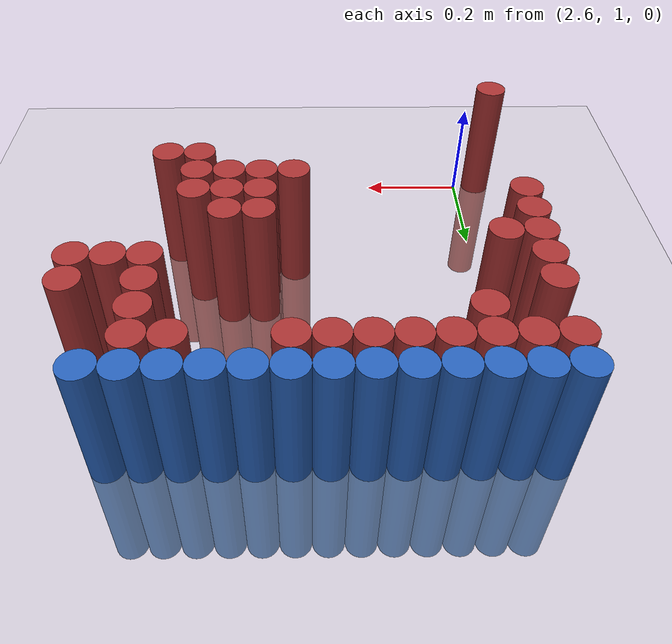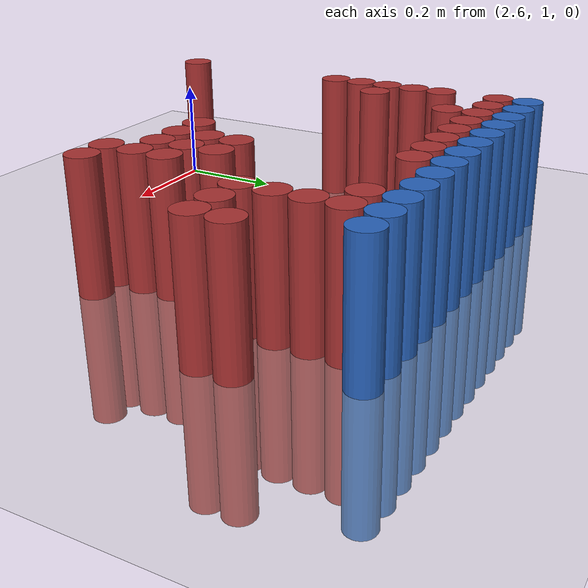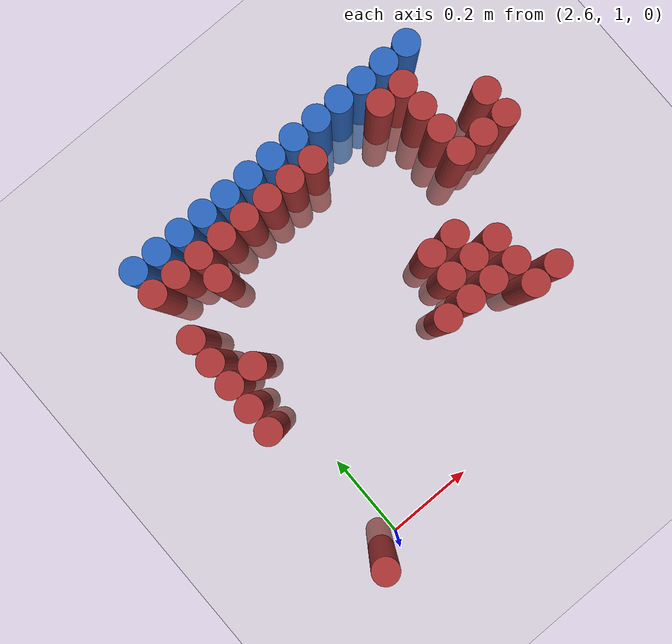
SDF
<sdf version="1.6">
 <world name="default">
  <model name="ground_plane">
   <static>1</static>
   <link name="link">
    <collision name="collision">
     <geometry><plane><normal>0 0 1</normal><size>100 100</size></plane></geometry>
     <surface><friction><ode><mu>100</mu><mu2>50</mu2></ode></friction></surface>
    </collision>
    <visual name="visual">
     <cast_shadows>0</cast_shadows>
     <geometry><plane><normal>0 0 1</normal><size>100 100</size></plane></geometry>
     <material>
      <script><uri>file://media/materials/scripts/gazebo.material</uri><name>Gazebo/Grey</name></script>
     </material>
    </visual>
   </link>
  </model>
  <model name="unit_cylinder_103">
   <static>1</static>
   <pose>2.550000 1.770000 0.000000 0.000000 0.000000 0.000000</pose>
   <link name="link">
    <inertial>
     <mass>1</mass>
     <inertia><ixx>0.145833</ixx><ixy>0</ixy><ixz>0</ixz><iyy>0.145833</iyy><iyz>0</iyz><izz>0.125</izz></inertia>
    </inertial>
    <collision name="collision">
     <geometry><cylinder><radius>0.030000</radius><length>0.5</length></cylinder></geometry>
    </collision>
    <visual name="visual">
     <geometry><cylinder><radius>0.030000</radius><length>0.5</length></cylinder></geometry>
     <material>
      <ambient>0.152000 0.379000 0.720000 1</ambient>
      <diffuse>0.152000 0.379000 0.720000 1</diffuse>
     </material>
     <material>
      <script><name>Gazebo/Grey</name><uri>file://media/materials/scripts/gazebo.material</uri></script>
     </material>
    </visual>
   </link>
  </model>
  <model name="unit_cylinder_104">
   <static>1</static>
   <pose>2.610000 1.770000 0.000000 0.000000 0.000000 0.000000</pose>
   <link name="link">
    <inertial>
     <mass>1</mass>
     <inertia><ixx>0.145833</ixx><ixy>0</ixy><ixz>0</ixz><iyy>0.145833</iyy><iyz>0</iyz><izz>0.125</izz></inertia>
    </inertial>
    <collision name="collision">
     <geometry><cylinder><radius>0.030000</radius><length>0.5</length></cylinder></geometry>
    </collision>
    <visual name="visual">
     <geometry><cylinder><radius>0.030000</radius><length>0.5</length></cylinder></geometry>
     <material>
      <ambient>0.152000 0.379000 0.720000 1</ambient>
      <diffuse>0.152000 0.379000 0.720000 1</diffuse>
     </material>
     <material>
      <script><name>Gazebo/Grey</name><uri>file://media/materials/scripts/gazebo.material</uri></script>
     </material>
    </visual>
   </link>
  </model>
  <model name="unit_cylinder_105">
   <static>1</static>
   <pose>2.670000 1.770000 0.000000 0.000000 0.000000 0.000000</pose>
   <link name="link">
    <inertial>
     <mass>1</mass>
     <inertia><ixx>0.145833</ixx><ixy>0</ixy><ixz>0</ixz><iyy>0.145833</iyy><iyz>0</iyz><izz>0.125</izz></inertia>
    </inertial>
    <collision name="collision">
     <geometry><cylinder><radius>0.030000</radius><length>0.5</length></cylinder></geometry>
    </collision>
    <visual name="visual">
     <geometry><cylinder><radius>0.030000</radius><length>0.5</length></cylinder></geometry>
     <material>
      <ambient>0.152000 0.379000 0.720000 1</ambient>
      <diffuse>0.152000 0.379000 0.720000 1</diffuse>
     </material>
     <material>
      <script><name>Gazebo/Grey</name><uri>file://media/materials/scripts/gazebo.material</uri></script>
     </material>
    </visual>
   </link>
  </model>
  <model name="unit_cylinder_106">
   <static>1</static>
   <pose>2.730000 1.770000 0.000000 0.000000 0.000000 0.000000</pose>
   <link name="link">
    <inertial>
     <mass>1</mass>
     <inertia><ixx>0.145833</ixx><ixy>0</ixy><ixz>0</ixz><iyy>0.145833</iyy><iyz>0</iyz><izz>0.125</izz></inertia>
    </inertial>
    <collision name="collision">
     <geometry><cylinder><radius>0.030000</radius><length>0.5</length></cylinder></geometry>
    </collision>
    <visual name="visual">
     <geometry><cylinder><radius>0.030000</radius><length>0.5</length></cylinder></geometry>
     <material>
      <ambient>0.152000 0.379000 0.720000 1</ambient>
      <diffuse>0.152000 0.379000 0.720000 1</diffuse>
     </material>
     <material>
      <script><name>Gazebo/Grey</name><uri>file://media/materials/scripts/gazebo.material</uri></script>
     </material>
    </visual>
   </link>
  </model>
  <model name="unit_cylinder_107">
   <static>1</static>
   <pose>2.790000 1.770000 0.000000 0.000000 0.000000 0.000000</pose>
   <link name="link">
    <inertial>
     <mass>1</mass>
     <inertia><ixx>0.145833</ixx><ixy>0</ixy><ixz>0</ixz><iyy>0.145833</iyy><iyz>0</iyz><izz>0.125</izz></inertia>
    </inertial>
    <collision name="collision">
     <geometry><cylinder><radius>0.030000</radius><length>0.5</length></cylinder></geometry>
    </collision>
    <visual name="visual">
     <geometry><cylinder><radius>0.030000</radius><length>0.5</length></cylinder></geometry>
     <material>
      <ambient>0.152000 0.379000 0.720000 1</ambient>
      <diffuse>0.152000 0.379000 0.720000 1</diffuse>
     </material>
     <material>
      <script><name>Gazebo/Grey</name><uri>file://media/materials/scripts/gazebo.material</uri></script>
     </material>
    </visual>
   </link>
  </model>
  <model name="unit_cylinder_108">
   <static>1</static>
   <pose>2.850000 1.770000 0.000000 0.000000 0.000000 0.000000</pose>
   <link name="link">
    <inertial>
     <mass>1</mass>
     <inertia><ixx>0.145833</ixx><ixy>0</ixy><ixz>0</ixz><iyy>0.145833</iyy><iyz>0</iyz><izz>0.125</izz></inertia>
    </inertial>
    <collision name="collision">
     <geometry><cylinder><radius>0.030000</radius><length>0.5</length></cylinder></geometry>
    </collision>
    <visual name="visual">
     <geometry><cylinder><radius>0.030000</radius><length>0.5</length></cylinder></geometry>
     <material>
      <ambient>0.152000 0.379000 0.720000 1</ambient>
      <diffuse>0.152000 0.379000 0.720000 1</diffuse>
     </material>
     <material>
      <script><name>Gazebo/Grey</name><uri>file://media/materials/scripts/gazebo.material</uri></script>
     </material>
    </visual>
   </link>
  </model>
  <model name="unit_cylinder_109">
   <static>1</static>
   <pose>2.910000 1.770000 0.000000 0.000000 0.000000 0.000000</pose>
   <link name="link">
    <inertial>
     <mass>1</mass>
     <inertia><ixx>0.145833</ixx><ixy>0</ixy><ixz>0</ixz><iyy>0.145833</iyy><iyz>0</iyz><izz>0.125</izz></inertia>
    </inertial>
    <collision name="collision">
     <geometry><cylinder><radius>0.030000</radius><length>0.5</length></cylinder></geometry>
    </collision>
    <visual name="visual">
     <geometry><cylinder><radius>0.030000</radius><length>0.5</length></cylinder></geometry>
     <material>
      <ambient>0.152000 0.379000 0.720000 1</ambient>
      <diffuse>0.152000 0.379000 0.720000 1</diffuse>
     </material>
     <material>
      <script><name>Gazebo/Grey</name><uri>file://media/materials/scripts/gazebo.material</uri></script>
     </material>
    </visual>
   </link>
  </model>
  <model name="unit_cylinder_110">
   <static>1</static>
   <pose>2.970000 1.770000 0.000000 0.000000 0.000000 0.000000</pose>
   <link name="link">
    <inertial>
     <mass>1</mass>
     <inertia><ixx>0.145833</ixx><ixy>0</ixy><ixz>0</ixz><iyy>0.145833</iyy><iyz>0</iyz><izz>0.125</izz></inertia>
    </inertial>
    <collision name="collision">
     <geometry><cylinder><radius>0.030000</radius><length>0.5</length></cylinder></geometry>
    </collision>
    <visual name="visual">
     <geometry><cylinder><radius>0.030000</radius><length>0.5</length></cylinder></geometry>
     <material>
      <ambient>0.152000 0.379000 0.720000 1</ambient>
      <diffuse>0.152000 0.379000 0.720000 1</diffuse>
     </material>
     <material>
      <script><name>Gazebo/Grey</name><uri>file://media/materials/scripts/gazebo.material</uri></script>
     </material>
    </visual>
   </link>
  </model>
  <model name="unit_cylinder_111">
   <static>1</static>
   <pose>3.030000 1.770000 0.000000 0.000000 0.000000 0.000000</pose>
   <link name="link">
    <inertial>
     <mass>1</mass>
     <inertia><ixx>0.145833</ixx><ixy>0</ixy><ixz>0</ixz><iyy>0.145833</iyy><iyz>0</iyz><izz>0.125</izz></inertia>
    </inertial>
    <collision name="collision">
     <geometry><cylinder><radius>0.030000</radius><length>0.5</length></cylinder></geometry>
    </collision>
    <visual name="visual">
     <geometry><cylinder><radius>0.030000</radius><length>0.5</length></cylinder></geometry>
     <material>
      <ambient>0.152000 0.379000 0.720000 1</ambient>
      <diffuse>0.152000 0.379000 0.720000 1</diffuse>
     </material>
     <material>
      <script><name>Gazebo/Grey</name><uri>file://media/materials/scripts/gazebo.material</uri></script>
     </material>
    </visual>
   </link>
  </model>
  <model name="unit_cylinder_112">
   <static>1</static>
   <pose>3.090000 1.770000 0.000000 0.000000 0.000000 0.000000</pose>
   <link name="link">
    <inertial>
     <mass>1</mass>
     <inertia><ixx>0.145833</ixx><ixy>0</ixy><ixz>0</ixz><iyy>0.145833</iyy><iyz>0</iyz><izz>0.125</izz></inertia>
    </inertial>
    <collision name="collision">
     <geometry><cylinder><radius>0.030000</radius><length>0.5</length></cylinder></geometry>
    </collision>
    <visual name="visual">
     <geometry><cylinder><radius>0.030000</radius><length>0.5</length></cylinder></geometry>
     <material>
      <ambient>0.152000 0.379000 0.720000 1</ambient>
      <diffuse>0.152000 0.379000 0.720000 1</diffuse>
     </material>
     <material>
      <script><name>Gazebo/Grey</name><uri>file://media/materials/scripts/gazebo.material</uri></script>
     </material>
    </visual>
   </link>
  </model>
  <model name="unit_cylinder_113">
   <static>1</static>
   <pose>3.150000 1.770000 0.000000 0.000000 0.000000 0.000000</pose>
   <link name="link">
    <inertial>
     <mass>1</mass>
     <inertia><ixx>0.145833</ixx><ixy>0</ixy><ixz>0</ixz><iyy>0.145833</iyy><iyz>0</iyz><izz>0.125</izz></inertia>
    </inertial>
    <collision name="collision">
     <geometry><cylinder><radius>0.030000</radius><length>0.5</length></cylinder></geometry>
    </collision>
    <visual name="visual">
     <geometry><cylinder><radius>0.030000</radius><length>0.5</length></cylinder></geometry>
     <material>
      <ambient>0.152000 0.379000 0.720000 1</ambient>
      <diffuse>0.152000 0.379000 0.720000 1</diffuse>
     </material>
     <material>
      <script><name>Gazebo/Grey</name><uri>file://media/materials/scripts/gazebo.material</uri></script>
     </material>
    </visual>
   </link>
  </model>
  <model name="unit_cylinder_114">
   <static>1</static>
   <pose>3.210000 1.770000 0.000000 0.000000 0.000000 0.000000</pose>
   <link name="link">
    <inertial>
     <mass>1</mass>
     <inertia><ixx>0.145833</ixx><ixy>0</ixy><ixz>0</ixz><iyy>0.145833</iyy><iyz>0</iyz><izz>0.125</izz></inertia>
    </inertial>
    <collision name="collision">
     <geometry><cylinder><radius>0.030000</radius><length>0.5</length></cylinder></geometry>
    </collision>
    <visual name="visual">
     <geometry><cylinder><radius>0.030000</radius><length>0.5</length></cylinder></geometry>
     <material>
      <ambient>0.152000 0.379000 0.720000 1</ambient>
      <diffuse>0.152000 0.379000 0.720000 1</diffuse>
     </material>
     <material>
      <script><name>Gazebo/Grey</name><uri>file://media/materials/scripts/gazebo.material</uri></script>
     </material>
    </visual>
   </link>
  </model>
  <model name="unit_cylinder_115">
   <static>1</static>
   <pose>3.270000 1.770000 0.000000 0.000000 0.000000 0.000000</pose>
   <link name="link">
    <inertial>
     <mass>1</mass>
     <inertia><ixx>0.145833</ixx><ixy>0</ixy><ixz>0</ixz><iyy>0.145833</iyy><iyz>0</iyz><izz>0.125</izz></inertia>
    </inertial>
    <collision name="collision">
     <geometry><cylinder><radius>0.030000</radius><length>0.5</length></cylinder></geometry>
    </collision>
    <visual name="visual">
     <geometry><cylinder><radius>0.030000</radius><length>0.5</length></cylinder></geometry>
     <material>
      <ambient>0.152000 0.379000 0.720000 1</ambient>
      <diffuse>0.152000 0.379000 0.720000 1</diffuse>
     </material>
     <material>
      <script><name>Gazebo/Grey</name><uri>file://media/materials/scripts/gazebo.material</uri></script>
     </material>
    </visual>
   </link>
  </model>
  <model name="unit_cylinder_131">
   <static>1</static>
   <pose>2.550000 1.710000 0.000000 0.000000 0.000000 0.000000</pose>
   <link name="link">
    <inertial>
     <mass>1</mass>
     <inertia><ixx>0.145833</ixx><ixy>0</ixy><ixz>0</ixz><iyy>0.145833</iyy><iyz>0</iyz><izz>0.125</izz></inertia>
    </inertial>
    <collision name="collision">
     <geometry><cylinder><radius>0.030000</radius><length>0.5</length></cylinder></geometry>
    </collision>
    <visual name="visual">
     <geometry><cylinder><radius>0.030000</radius><length>0.5</length></cylinder></geometry>
     <material>
      <ambient>0.648000 0.192000 0.192000 1</ambient>
      <diffuse>0.648000 0.192000 0.192000 1</diffuse>
     </material>
     <material>
      <script><name>Gazebo/Grey</name><uri>file://media/materials/scripts/gazebo.material</uri></script>
     </material>
    </visual>
   </link>
  </model>
  <model name="unit_cylinder_132">
   <static>1</static>
   <pose>2.610000 1.710000 0.000000 0.000000 0.000000 0.000000</pose>
   <link name="link">
    <inertial>
     <mass>1</mass>
     <inertia><ixx>0.145833</ixx><ixy>0</ixy><ixz>0</ixz><iyy>0.145833</iyy><iyz>0</iyz><izz>0.125</izz></inertia>
    </inertial>
    <collision name="collision">
     <geometry><cylinder><radius>0.030000</radius><length>0.5</length></cylinder></geometry>
    </collision>
    <visual name="visual">
     <geometry><cylinder><radius>0.030000</radius><length>0.5</length></cylinder></geometry>
     <material>
      <ambient>0.648000 0.192000 0.192000 1</ambient>
      <diffuse>0.648000 0.192000 0.192000 1</diffuse>
     </material>
     <material>
      <script><name>Gazebo/Grey</name><uri>file://media/materials/scripts/gazebo.material</uri></script>
     </material>
    </visual>
   </link>
  </model>
  <model name="unit_cylinder_133">
   <static>1</static>
   <pose>2.670000 1.710000 0.000000 0.000000 0.000000 0.000000</pose>
   <link name="link">
    <inertial>
     <mass>1</mass>
     <inertia><ixx>0.145833</ixx><ixy>0</ixy><ixz>0</ixz><iyy>0.145833</iyy><iyz>0</iyz><izz>0.125</izz></inertia>
    </inertial>
    <collision name="collision">
     <geometry><cylinder><radius>0.030000</radius><length>0.5</length></cylinder></geometry>
    </collision>
    <visual name="visual">
     <geometry><cylinder><radius>0.030000</radius><length>0.5</length></cylinder></geometry>
     <material>
      <ambient>0.648000 0.192000 0.192000 1</ambient>
      <diffuse>0.648000 0.192000 0.192000 1</diffuse>
     </material>
     <material>
      <script><name>Gazebo/Grey</name><uri>file://media/materials/scripts/gazebo.material</uri></script>
     </material>
    </visual>
   </link>
  </model>
  <model name="unit_cylinder_134">
   <static>1</static>
   <pose>2.730000 1.710000 0.000000 0.000000 0.000000 0.000000</pose>
   <link name="link">
    <inertial>
     <mass>1</mass>
     <inertia><ixx>0.145833</ixx><ixy>0</ixy><ixz>0</ixz><iyy>0.145833</iyy><iyz>0</iyz><izz>0.125</izz></inertia>
    </inertial>
    <collision name="collision">
     <geometry><cylinder><radius>0.030000</radius><length>0.5</length></cylinder></geometry>
    </collision>
    <visual name="visual">
     <geometry><cylinder><radius>0.030000</radius><length>0.5</length></cylinder></geometry>
     <material>
      <ambient>0.648000 0.192000 0.192000 1</ambient>
      <diffuse>0.648000 0.192000 0.192000 1</diffuse>
     </material>
     <material>
      <script><name>Gazebo/Grey</name><uri>file://media/materials/scripts/gazebo.material</uri></script>
     </material>
    </visual>
   </link>
  </model>
  <model name="unit_cylinder_135">
   <static>1</static>
   <pose>2.790000 1.710000 0.000000 0.000000 0.000000 0.000000</pose>
   <link name="link">
    <inertial>
     <mass>1</mass>
     <inertia><ixx>0.145833</ixx><ixy>0</ixy><ixz>0</ixz><iyy>0.145833</iyy><iyz>0</iyz><izz>0.125</izz></inertia>
    </inertial>
    <collision name="collision">
     <geometry><cylinder><radius>0.030000</radius><length>0.5</length></cylinder></geometry>
    </collision>
    <visual name="visual">
     <geometry><cylinder><radius>0.030000</radius><length>0.5</length></cylinder></geometry>
     <material>
      <ambient>0.648000 0.192000 0.192000 1</ambient>
      <diffuse>0.648000 0.192000 0.192000 1</diffuse>
     </material>
     <material>
      <script><name>Gazebo/Grey</name><uri>file://media/materials/scripts/gazebo.material</uri></script>
     </material>
    </visual>
   </link>
  </model>
  <model name="unit_cylinder_136">
   <static>1</static>
   <pose>2.850000 1.710000 0.000000 0.000000 0.000000 0.000000</pose>
   <link name="link">
    <inertial>
     <mass>1</mass>
     <inertia><ixx>0.145833</ixx><ixy>0</ixy><ixz>0</ixz><iyy>0.145833</iyy><iyz>0</iyz><izz>0.125</izz></inertia>
    </inertial>
    <collision name="collision">
     <geometry><cylinder><radius>0.030000</radius><length>0.5</length></cylinder></geometry>
    </collision>
    <visual name="visual">
     <geometry><cylinder><radius>0.030000</radius><length>0.5</length></cylinder></geometry>
     <material>
      <ambient>0.648000 0.192000 0.192000 1</ambient>
      <diffuse>0.648000 0.192000 0.192000 1</diffuse>
     </material>
     <material>
      <script><name>Gazebo/Grey</name><uri>file://media/materials/scripts/gazebo.material</uri></script>
     </material>
    </visual>
   </link>
  </model>
  <model name="unit_cylinder_137">
   <static>1</static>
   <pose>2.910000 1.710000 0.000000 0.000000 0.000000 0.000000</pose>
   <link name="link">
    <inertial>
     <mass>1</mass>
     <inertia><ixx>0.145833</ixx><ixy>0</ixy><ixz>0</ixz><iyy>0.145833</iyy><iyz>0</iyz><izz>0.125</izz></inertia>
    </inertial>
    <collision name="collision">
     <geometry><cylinder><radius>0.030000</radius><length>0.5</length></cylinder></geometry>
    </collision>
    <visual name="visual">
     <geometry><cylinder><radius>0.030000</radius><length>0.5</length></cylinder></geometry>
     <material>
      <ambient>0.648000 0.192000 0.192000 1</ambient>
      <diffuse>0.648000 0.192000 0.192000 1</diffuse>
     </material>
     <material>
      <script><name>Gazebo/Grey</name><uri>file://media/materials/scripts/gazebo.material</uri></script>
     </material>
    </visual>
   </link>
  </model>
  <model name="unit_cylinder_138">
   <static>1</static>
   <pose>2.970000 1.710000 0.000000 0.000000 0.000000 0.000000</pose>
   <link name="link">
    <inertial>
     <mass>1</mass>
     <inertia><ixx>0.145833</ixx><ixy>0</ixy><ixz>0</ixz><iyy>0.145833</iyy><iyz>0</iyz><izz>0.125</izz></inertia>
    </inertial>
    <collision name="collision">
     <geometry><cylinder><radius>0.030000</radius><length>0.5</length></cylinder></geometry>
    </collision>
    <visual name="visual">
     <geometry><cylinder><radius>0.030000</radius><length>0.5</length></cylinder></geometry>
     <material>
      <ambient>0.648000 0.192000 0.192000 1</ambient>
      <diffuse>0.648000 0.192000 0.192000 1</diffuse>
     </material>
     <material>
      <script><name>Gazebo/Grey</name><uri>file://media/materials/scripts/gazebo.material</uri></script>
     </material>
    </visual>
   </link>
  </model>
  <model name="unit_cylinder_139">
   <static>1</static>
   <pose>3.150000 1.710000 0.000000 0.000000 0.000000 0.000000</pose>
   <link name="link">
    <inertial>
     <mass>1</mass>
     <inertia><ixx>0.145833</ixx><ixy>0</ixy><ixz>0</ixz><iyy>0.145833</iyy><iyz>0</iyz><izz>0.125</izz></inertia>
    </inertial>
    <collision name="collision">
     <geometry><cylinder><radius>0.030000</radius><length>0.5</length></cylinder></geometry>
    </collision>
    <visual name="visual">
     <geometry><cylinder><radius>0.030000</radius><length>0.5</length></cylinder></geometry>
     <material>
      <ambient>0.648000 0.192000 0.192000 1</ambient>
      <diffuse>0.648000 0.192000 0.192000 1</diffuse>
     </material>
     <material>
      <script><name>Gazebo/Grey</name><uri>file://media/materials/scripts/gazebo.material</uri></script>
     </material>
    </visual>
   </link>
  </model>
  <model name="unit_cylinder_140">
   <static>1</static>
   <pose>3.210000 1.710000 0.000000 0.000000 0.000000 0.000000</pose>
   <link name="link">
    <inertial>
     <mass>1</mass>
     <inertia><ixx>0.145833</ixx><ixy>0</ixy><ixz>0</ixz><iyy>0.145833</iyy><iyz>0</iyz><izz>0.125</izz></inertia>
    </inertial>
    <collision name="collision">
     <geometry><cylinder><radius>0.030000</radius><length>0.5</length></cylinder></geometry>
    </collision>
    <visual name="visual">
     <geometry><cylinder><radius>0.030000</radius><length>0.5</length></cylinder></geometry>
     <material>
      <ambient>0.648000 0.192000 0.192000 1</ambient>
      <diffuse>0.648000 0.192000 0.192000 1</diffuse>
     </material>
     <material>
      <script><name>Gazebo/Grey</name><uri>file://media/materials/scripts/gazebo.material</uri></script>
     </material>
    </visual>
   </link>
  </model>
  <model name="unit_cylinder_150">
   <static>1</static>
   <pose>2.670000 1.650000 0.000000 0.000000 0.000000 0.000000</pose>
   <link name="link">
    <inertial>
     <mass>1</mass>
     <inertia><ixx>0.145833</ixx><ixy>0</ixy><ixz>0</ixz><iyy>0.145833</iyy><iyz>0</iyz><izz>0.125</izz></inertia>
    </inertial>
    <collision name="collision">
     <geometry><cylinder><radius>0.030000</radius><length>0.5</length></cylinder></geometry>
    </collision>
    <visual name="visual">
     <geometry><cylinder><radius>0.030000</radius><length>0.5</length></cylinder></geometry>
     <material>
      <ambient>0.648000 0.192000 0.192000 1</ambient>
      <diffuse>0.648000 0.192000 0.192000 1</diffuse>
     </material>
     <material>
      <script><name>Gazebo/Grey</name><uri>file://media/materials/scripts/gazebo.material</uri></script>
     </material>
    </visual>
   </link>
  </model>
  <model name="unit_cylinder_151">
   <static>1</static>
   <pose>3.210000 1.650000 0.000000 0.000000 0.000000 0.000000</pose>
   <link name="link">
    <inertial>
     <mass>1</mass>
     <inertia><ixx>0.145833</ixx><ixy>0</ixy><ixz>0</ixz><iyy>0.145833</iyy><iyz>0</iyz><izz>0.125</izz></inertia>
    </inertial>
    <collision name="collision">
     <geometry><cylinder><radius>0.030000</radius><length>0.5</length></cylinder></geometry>
    </collision>
    <visual name="visual">
     <geometry><cylinder><radius>0.030000</radius><length>0.5</length></cylinder></geometry>
     <material>
      <ambient>0.648000 0.192000 0.192000 1</ambient>
      <diffuse>0.648000 0.192000 0.192000 1</diffuse>
     </material>
     <material>
      <script><name>Gazebo/Grey</name><uri>file://media/materials/scripts/gazebo.material</uri></script>
     </material>
    </visual>
   </link>
  </model>
  <model name="unit_cylinder_156">
   <static>1</static>
   <pose>2.550000 1.590000 0.000000 0.000000 0.000000 0.000000</pose>
   <link name="link">
    <inertial>
     <mass>1</mass>
     <inertia><ixx>0.145833</ixx><ixy>0</ixy><ixz>0</ixz><iyy>0.145833</iyy><iyz>0</iyz><izz>0.125</izz></inertia>
    </inertial>
    <collision name="collision">
     <geometry><cylinder><radius>0.030000</radius><length>0.5</length></cylinder></geometry>
    </collision>
    <visual name="visual">
     <geometry><cylinder><radius>0.030000</radius><length>0.5</length></cylinder></geometry>
     <material>
      <ambient>0.648000 0.192000 0.192000 1</ambient>
      <diffuse>0.648000 0.192000 0.192000 1</diffuse>
     </material>
     <material>
      <script><name>Gazebo/Grey</name><uri>file://media/materials/scripts/gazebo.material</uri></script>
     </material>
    </visual>
   </link>
  </model>
  <model name="unit_cylinder_157">
   <static>1</static>
   <pose>3.210000 1.590000 0.000000 0.000000 0.000000 0.000000</pose>
   <link name="link">
    <inertial>
     <mass>1</mass>
     <inertia><ixx>0.145833</ixx><ixy>0</ixy><ixz>0</ixz><iyy>0.145833</iyy><iyz>0</iyz><izz>0.125</izz></inertia>
    </inertial>
    <collision name="collision">
     <geometry><cylinder><radius>0.030000</radius><length>0.5</length></cylinder></geometry>
    </collision>
    <visual name="visual">
     <geometry><cylinder><radius>0.030000</radius><length>0.5</length></cylinder></geometry>
     <material>
      <ambient>0.648000 0.192000 0.192000 1</ambient>
      <diffuse>0.648000 0.192000 0.192000 1</diffuse>
     </material>
     <material>
      <script><name>Gazebo/Grey</name><uri>file://media/materials/scripts/gazebo.material</uri></script>
     </material>
    </visual>
   </link>
  </model>
  <model name="unit_cylinder_158">
   <static>1</static>
   <pose>3.330000 1.590000 0.000000 0.000000 0.000000 0.000000</pose>
   <link name="link">
    <inertial>
     <mass>1</mass>
     <inertia><ixx>0.145833</ixx><ixy>0</ixy><ixz>0</ixz><iyy>0.145833</iyy><iyz>0</iyz><izz>0.125</izz></inertia>
    </inertial>
    <collision name="collision">
     <geometry><cylinder><radius>0.030000</radius><length>0.5</length></cylinder></geometry>
    </collision>
    <visual name="visual">
     <geometry><cylinder><radius>0.030000</radius><length>0.5</length></cylinder></geometry>
     <material>
      <ambient>0.648000 0.192000 0.192000 1</ambient>
      <diffuse>0.648000 0.192000 0.192000 1</diffuse>
     </material>
     <material>
      <script><name>Gazebo/Grey</name><uri>file://media/materials/scripts/gazebo.material</uri></script>
     </material>
    </visual>
   </link>
  </model>
  <model name="unit_cylinder_160">
   <static>1</static>
   <pose>2.550000 1.530000 0.000000 0.000000 0.000000 0.000000</pose>
   <link name="link">
    <inertial>
     <mass>1</mass>
     <inertia><ixx>0.145833</ixx><ixy>0</ixy><ixz>0</ixz><iyy>0.145833</iyy><iyz>0</iyz><izz>0.125</izz></inertia>
    </inertial>
    <collision name="collision">
     <geometry><cylinder><radius>0.030000</radius><length>0.5</length></cylinder></geometry>
    </collision>
    <visual name="visual">
     <geometry><cylinder><radius>0.030000</radius><length>0.5</length></cylinder></geometry>
     <material>
      <ambient>0.648000 0.192000 0.192000 1</ambient>
      <diffuse>0.648000 0.192000 0.192000 1</diffuse>
     </material>
     <material>
      <script><name>Gazebo/Grey</name><uri>file://media/materials/scripts/gazebo.material</uri></script>
     </material>
    </visual>
   </link>
  </model>
  <model name="unit_cylinder_161">
   <static>1</static>
   <pose>3.210000 1.530000 0.000000 0.000000 0.000000 0.000000</pose>
   <link name="link">
    <inertial>
     <mass>1</mass>
     <inertia><ixx>0.145833</ixx><ixy>0</ixy><ixz>0</ixz><iyy>0.145833</iyy><iyz>0</iyz><izz>0.125</izz></inertia>
    </inertial>
    <collision name="collision">
     <geometry><cylinder><radius>0.030000</radius><length>0.5</length></cylinder></geometry>
    </collision>
    <visual name="visual">
     <geometry><cylinder><radius>0.030000</radius><length>0.5</length></cylinder></geometry>
     <material>
      <ambient>0.648000 0.192000 0.192000 1</ambient>
      <diffuse>0.648000 0.192000 0.192000 1</diffuse>
     </material>
     <material>
      <script><name>Gazebo/Grey</name><uri>file://media/materials/scripts/gazebo.material</uri></script>
     </material>
    </visual>
   </link>
  </model>
  <model name="unit_cylinder_162">
   <static>1</static>
   <pose>3.270000 1.530000 0.000000 0.000000 0.000000 0.000000</pose>
   <link name="link">
    <inertial>
     <mass>1</mass>
     <inertia><ixx>0.145833</ixx><ixy>0</ixy><ixz>0</ixz><iyy>0.145833</iyy><iyz>0</iyz><izz>0.125</izz></inertia>
    </inertial>
    <collision name="collision">
     <geometry><cylinder><radius>0.030000</radius><length>0.5</length></cylinder></geometry>
    </collision>
    <visual name="visual">
     <geometry><cylinder><radius>0.030000</radius><length>0.5</length></cylinder></geometry>
     <material>
      <ambient>0.648000 0.192000 0.192000 1</ambient>
      <diffuse>0.648000 0.192000 0.192000 1</diffuse>
     </material>
     <material>
      <script><name>Gazebo/Grey</name><uri>file://media/materials/scripts/gazebo.material</uri></script>
     </material>
    </visual>
   </link>
  </model>
  <model name="unit_cylinder_163">
   <static>1</static>
   <pose>3.330000 1.530000 0.000000 0.000000 0.000000 0.000000</pose>
   <link name="link">
    <inertial>
     <mass>1</mass>
     <inertia><ixx>0.145833</ixx><ixy>0</ixy><ixz>0</ixz><iyy>0.145833</iyy><iyz>0</iyz><izz>0.125</izz></inertia>
    </inertial>
    <collision name="collision">
     <geometry><cylinder><radius>0.030000</radius><length>0.5</length></cylinder></geometry>
    </collision>
    <visual name="visual">
     <geometry><cylinder><radius>0.030000</radius><length>0.5</length></cylinder></geometry>
     <material>
      <ambient>0.648000 0.192000 0.192000 1</ambient>
      <diffuse>0.648000 0.192000 0.192000 1</diffuse>
     </material>
     <material>
      <script><name>Gazebo/Grey</name><uri>file://media/materials/scripts/gazebo.material</uri></script>
     </material>
    </visual>
   </link>
  </model>
  <model name="unit_cylinder_166">
   <static>1</static>
   <pose>2.550000 1.470000 0.000000 0.000000 0.000000 0.000000</pose>
   <link name="link">
    <inertial>
     <mass>1</mass>
     <inertia><ixx>0.145833</ixx><ixy>0</ixy><ixz>0</ixz><iyy>0.145833</iyy><iyz>0</iyz><izz>0.125</izz></inertia>
    </inertial>
    <collision name="collision">
     <geometry><cylinder><radius>0.030000</radius><length>0.5</length></cylinder></geometry>
    </collision>
    <visual name="visual">
     <geometry><cylinder><radius>0.030000</radius><length>0.5</length></cylinder></geometry>
     <material>
      <ambient>0.648000 0.192000 0.192000 1</ambient>
      <diffuse>0.648000 0.192000 0.192000 1</diffuse>
     </material>
     <material>
      <script><name>Gazebo/Grey</name><uri>file://media/materials/scripts/gazebo.material</uri></script>
     </material>
    </visual>
   </link>
  </model>
  <model name="unit_cylinder_167">
   <static>1</static>
   <pose>2.610000 1.470000 0.000000 0.000000 0.000000 0.000000</pose>
   <link name="link">
    <inertial>
     <mass>1</mass>
     <inertia><ixx>0.145833</ixx><ixy>0</ixy><ixz>0</ixz><iyy>0.145833</iyy><iyz>0</iyz><izz>0.125</izz></inertia>
    </inertial>
    <collision name="collision">
     <geometry><cylinder><radius>0.030000</radius><length>0.5</length></cylinder></geometry>
    </collision>
    <visual name="visual">
     <geometry><cylinder><radius>0.030000</radius><length>0.5</length></cylinder></geometry>
     <material>
      <ambient>0.648000 0.192000 0.192000 1</ambient>
      <diffuse>0.648000 0.192000 0.192000 1</diffuse>
     </material>
     <material>
      <script><name>Gazebo/Grey</name><uri>file://media/materials/scripts/gazebo.material</uri></script>
     </material>
    </visual>
   </link>
  </model>
  <model name="unit_cylinder_174">
   <static>1</static>
   <pose>2.550000 1.410000 0.000000 0.000000 0.000000 0.000000</pose>
   <link name="link">
    <inertial>
     <mass>1</mass>
     <inertia><ixx>0.145833</ixx><ixy>0</ixy><ixz>0</ixz><iyy>0.145833</iyy><iyz>0</iyz><izz>0.125</izz></inertia>
    </inertial>
    <collision name="collision">
     <geometry><cylinder><radius>0.030000</radius><length>0.5</length></cylinder></geometry>
    </collision>
    <visual name="visual">
     <geometry><cylinder><radius>0.030000</radius><length>0.5</length></cylinder></geometry>
     <material>
      <ambient>0.648000 0.192000 0.192000 1</ambient>
      <diffuse>0.648000 0.192000 0.192000 1</diffuse>
     </material>
     <material>
      <script><name>Gazebo/Grey</name><uri>file://media/materials/scripts/gazebo.material</uri></script>
     </material>
    </visual>
   </link>
  </model>
  <model name="unit_cylinder_175">
   <static>1</static>
   <pose>3.030000 1.410000 0.000000 0.000000 0.000000 0.000000</pose>
   <link name="link">
    <inertial>
     <mass>1</mass>
     <inertia><ixx>0.145833</ixx><ixy>0</ixy><ixz>0</ixz><iyy>0.145833</iyy><iyz>0</iyz><izz>0.125</izz></inertia>
    </inertial>
    <collision name="collision">
     <geometry><cylinder><radius>0.030000</radius><length>0.5</length></cylinder></geometry>
    </collision>
    <visual name="visual">
     <geometry><cylinder><radius>0.030000</radius><length>0.5</length></cylinder></geometry>
     <material>
      <ambient>0.648000 0.192000 0.192000 1</ambient>
      <diffuse>0.648000 0.192000 0.192000 1</diffuse>
     </material>
     <material>
      <script><name>Gazebo/Grey</name><uri>file://media/materials/scripts/gazebo.material</uri></script>
     </material>
    </visual>
   </link>
  </model>
  <model name="unit_cylinder_176">
   <static>1</static>
   <pose>3.090000 1.410000 0.000000 0.000000 0.000000 0.000000</pose>
   <link name="link">
    <inertial>
     <mass>1</mass>
     <inertia><ixx>0.145833</ixx><ixy>0</ixy><ixz>0</ixz><iyy>0.145833</iyy><iyz>0</iyz><izz>0.125</izz></inertia>
    </inertial>
    <collision name="collision">
     <geometry><cylinder><radius>0.030000</radius><length>0.5</length></cylinder></geometry>
    </collision>
    <visual name="visual">
     <geometry><cylinder><radius>0.030000</radius><length>0.5</length></cylinder></geometry>
     <material>
      <ambient>0.648000 0.192000 0.192000 1</ambient>
      <diffuse>0.648000 0.192000 0.192000 1</diffuse>
     </material>
     <material>
      <script><name>Gazebo/Grey</name><uri>file://media/materials/scripts/gazebo.material</uri></script>
     </material>
    </visual>
   </link>
  </model>
  <model name="unit_cylinder_184">
   <static>1</static>
   <pose>2.550000 1.350000 0.000000 0.000000 0.000000 0.000000</pose>
   <link name="link">
    <inertial>
     <mass>1</mass>
     <inertia><ixx>0.145833</ixx><ixy>0</ixy><ixz>0</ixz><iyy>0.145833</iyy><iyz>0</iyz><izz>0.125</izz></inertia>
    </inertial>
    <collision name="collision">
     <geometry><cylinder><radius>0.030000</radius><length>0.5</length></cylinder></geometry>
    </collision>
    <visual name="visual">
     <geometry><cylinder><radius>0.030000</radius><length>0.5</length></cylinder></geometry>
     <material>
      <ambient>0.648000 0.192000 0.192000 1</ambient>
      <diffuse>0.648000 0.192000 0.192000 1</diffuse>
     </material>
     <material>
      <script><name>Gazebo/Grey</name><uri>file://media/materials/scripts/gazebo.material</uri></script>
     </material>
    </visual>
   </link>
  </model>
  <model name="unit_cylinder_185">
   <static>1</static>
   <pose>3.030000 1.350000 0.000000 0.000000 0.000000 0.000000</pose>
   <link name="link">
    <inertial>
     <mass>1</mass>
     <inertia><ixx>0.145833</ixx><ixy>0</ixy><ixz>0</ixz><iyy>0.145833</iyy><iyz>0</iyz><izz>0.125</izz></inertia>
    </inertial>
    <collision name="collision">
     <geometry><cylinder><radius>0.030000</radius><length>0.5</length></cylinder></geometry>
    </collision>
    <visual name="visual">
     <geometry><cylinder><radius>0.030000</radius><length>0.5</length></cylinder></geometry>
     <material>
      <ambient>0.648000 0.192000 0.192000 1</ambient>
      <diffuse>0.648000 0.192000 0.192000 1</diffuse>
     </material>
     <material>
      <script><name>Gazebo/Grey</name><uri>file://media/materials/scripts/gazebo.material</uri></script>
     </material>
    </visual>
   </link>
  </model>
  <model name="unit_cylinder_186">
   <static>1</static>
   <pose>3.090000 1.350000 0.000000 0.000000 0.000000 0.000000</pose>
   <link name="link">
    <inertial>
     <mass>1</mass>
     <inertia><ixx>0.145833</ixx><ixy>0</ixy><ixz>0</ixz><iyy>0.145833</iyy><iyz>0</iyz><izz>0.125</izz></inertia>
    </inertial>
    <collision name="collision">
     <geometry><cylinder><radius>0.030000</radius><length>0.5</length></cylinder></geometry>
    </collision>
    <visual name="visual">
     <geometry><cylinder><radius>0.030000</radius><length>0.5</length></cylinder></geometry>
     <material>
      <ambient>0.648000 0.192000 0.192000 1</ambient>
      <diffuse>0.648000 0.192000 0.192000 1</diffuse>
     </material>
     <material>
      <script><name>Gazebo/Grey</name><uri>file://media/materials/scripts/gazebo.material</uri></script>
     </material>
    </visual>
   </link>
  </model>
  <model name="unit_cylinder_187">
   <static>1</static>
   <pose>3.150000 1.350000 0.000000 0.000000 0.000000 0.000000</pose>
   <link name="link">
    <inertial>
     <mass>1</mass>
     <inertia><ixx>0.145833</ixx><ixy>0</ixy><ixz>0</ixz><iyy>0.145833</iyy><iyz>0</iyz><izz>0.125</izz></inertia>
    </inertial>
    <collision name="collision">
     <geometry><cylinder><radius>0.030000</radius><length>0.5</length></cylinder></geometry>
    </collision>
    <visual name="visual">
     <geometry><cylinder><radius>0.030000</radius><length>0.5</length></cylinder></geometry>
     <material>
      <ambient>0.648000 0.192000 0.192000 1</ambient>
      <diffuse>0.648000 0.192000 0.192000 1</diffuse>
     </material>
     <material>
      <script><name>Gazebo/Grey</name><uri>file://media/materials/scripts/gazebo.material</uri></script>
     </material>
    </visual>
   </link>
  </model>
  <model name="unit_cylinder_192">
   <static>1</static>
   <pose>2.970000 1.290000 0.000000 0.000000 0.000000 0.000000</pose>
   <link name="link">
    <inertial>
     <mass>1</mass>
     <inertia><ixx>0.145833</ixx><ixy>0</ixy><ixz>0</ixz><iyy>0.145833</iyy><iyz>0</iyz><izz>0.125</izz></inertia>
    </inertial>
    <collision name="collision">
     <geometry><cylinder><radius>0.030000</radius><length>0.5</length></cylinder></geometry>
    </collision>
    <visual name="visual">
     <geometry><cylinder><radius>0.030000</radius><length>0.5</length></cylinder></geometry>
     <material>
      <ambient>0.648000 0.192000 0.192000 1</ambient>
      <diffuse>0.648000 0.192000 0.192000 1</diffuse>
     </material>
     <material>
      <script><name>Gazebo/Grey</name><uri>file://media/materials/scripts/gazebo.material</uri></script>
     </material>
    </visual>
   </link>
  </model>
  <model name="unit_cylinder_193">
   <static>1</static>
   <pose>3.030000 1.290000 0.000000 0.000000 0.000000 0.000000</pose>
   <link name="link">
    <inertial>
     <mass>1</mass>
     <inertia><ixx>0.145833</ixx><ixy>0</ixy><ixz>0</ixz><iyy>0.145833</iyy><iyz>0</iyz><izz>0.125</izz></inertia>
    </inertial>
    <collision name="collision">
     <geometry><cylinder><radius>0.030000</radius><length>0.5</length></cylinder></geometry>
    </collision>
    <visual name="visual">
     <geometry><cylinder><radius>0.030000</radius><length>0.5</length></cylinder></geometry>
     <material>
      <ambient>0.648000 0.192000 0.192000 1</ambient>
      <diffuse>0.648000 0.192000 0.192000 1</diffuse>
     </material>
     <material>
      <script><name>Gazebo/Grey</name><uri>file://media/materials/scripts/gazebo.material</uri></script>
     </material>
    </visual>
   </link>
  </model>
  <model name="unit_cylinder_194">
   <static>1</static>
   <pose>3.090000 1.290000 0.000000 0.000000 0.000000 0.000000</pose>
   <link name="link">
    <inertial>
     <mass>1</mass>
     <inertia><ixx>0.145833</ixx><ixy>0</ixy><ixz>0</ixz><iyy>0.145833</iyy><iyz>0</iyz><izz>0.125</izz></inertia>
    </inertial>
    <collision name="collision">
     <geometry><cylinder><radius>0.030000</radius><length>0.5</length></cylinder></geometry>
    </collision>
    <visual name="visual">
     <geometry><cylinder><radius>0.030000</radius><length>0.5</length></cylinder></geometry>
     <material>
      <ambient>0.648000 0.192000 0.192000 1</ambient>
      <diffuse>0.648000 0.192000 0.192000 1</diffuse>
     </material>
     <material>
      <script><name>Gazebo/Grey</name><uri>file://media/materials/scripts/gazebo.material</uri></script>
     </material>
    </visual>
   </link>
  </model>
  <model name="unit_cylinder_195">
   <static>1</static>
   <pose>3.150000 1.290000 0.000000 0.000000 0.000000 0.000000</pose>
   <link name="link">
    <inertial>
     <mass>1</mass>
     <inertia><ixx>0.145833</ixx><ixy>0</ixy><ixz>0</ixz><iyy>0.145833</iyy><iyz>0</iyz><izz>0.125</izz></inertia>
    </inertial>
    <collision name="collision">
     <geometry><cylinder><radius>0.030000</radius><length>0.5</length></cylinder></geometry>
    </collision>
    <visual name="visual">
     <geometry><cylinder><radius>0.030000</radius><length>0.5</length></cylinder></geometry>
     <material>
      <ambient>0.648000 0.192000 0.192000 1</ambient>
      <diffuse>0.648000 0.192000 0.192000 1</diffuse>
     </material>
     <material>
      <script><name>Gazebo/Grey</name><uri>file://media/materials/scripts/gazebo.material</uri></script>
     </material>
    </visual>
   </link>
  </model>
  <model name="unit_cylinder_201">
   <static>1</static>
   <pose>3.150000 1.230000 0.000000 0.000000 0.000000 0.000000</pose>
   <link name="link">
    <inertial>
     <mass>1</mass>
     <inertia><ixx>0.145833</ixx><ixy>0</ixy><ixz>0</ixz><iyy>0.145833</iyy><iyz>0</iyz><izz>0.125</izz></inertia>
    </inertial>
    <collision name="collision">
     <geometry><cylinder><radius>0.030000</radius><length>0.5</length></cylinder></geometry>
    </collision>
    <visual name="visual">
     <geometry><cylinder><radius>0.030000</radius><length>0.5</length></cylinder></geometry>
     <material>
      <ambient>0.648000 0.192000 0.192000 1</ambient>
      <diffuse>0.648000 0.192000 0.192000 1</diffuse>
     </material>
     <material>
      <script><name>Gazebo/Grey</name><uri>file://media/materials/scripts/gazebo.material</uri></script>
     </material>
    </visual>
   </link>
  </model>
  <model name="unit_cylinder_202">
   <static>1</static>
   <pose>3.210000 1.230000 0.000000 0.000000 0.000000 0.000000</pose>
   <link name="link">
    <inertial>
     <mass>1</mass>
     <inertia><ixx>0.145833</ixx><ixy>0</ixy><ixz>0</ixz><iyy>0.145833</iyy><iyz>0</iyz><izz>0.125</izz></inertia>
    </inertial>
    <collision name="collision">
     <geometry><cylinder><radius>0.030000</radius><length>0.5</length></cylinder></geometry>
    </collision>
    <visual name="visual">
     <geometry><cylinder><radius>0.030000</radius><length>0.5</length></cylinder></geometry>
     <material>
      <ambient>0.648000 0.192000 0.192000 1</ambient>
      <diffuse>0.648000 0.192000 0.192000 1</diffuse>
     </material>
     <material>
      <script><name>Gazebo/Grey</name><uri>file://media/materials/scripts/gazebo.material</uri></script>
     </material>
    </visual>
   </link>
  </model>
  <model name="unit_cylinder_215">
   <static>1</static>
   <pose>2.550000 0.990000 0.000000 0.000000 0.000000 0.000000</pose>
   <link name="link">
    <inertial>
     <mass>1</mass>
     <inertia><ixx>0.145833</ixx><ixy>0</ixy><ixz>0</ixz><iyy>0.145833</iyy><iyz>0</iyz><izz>0.125</izz></inertia>
    </inertial>
    <collision name="collision">
     <geometry><cylinder><radius>0.030000</radius><length>0.5</length></cylinder></geometry>
    </collision>
    <visual name="visual">
     <geometry><cylinder><radius>0.030000</radius><length>0.5</length></cylinder></geometry>
     <material>
      <ambient>0.648000 0.192000 0.192000 1</ambient>
      <diffuse>0.648000 0.192000 0.192000 1</diffuse>
     </material>
     <material>
      <script><name>Gazebo/Grey</name><uri>file://media/materials/scripts/gazebo.material</uri></script>
     </material>
    </visual>
   </link>
  </model>
 </world>
</sdf>
